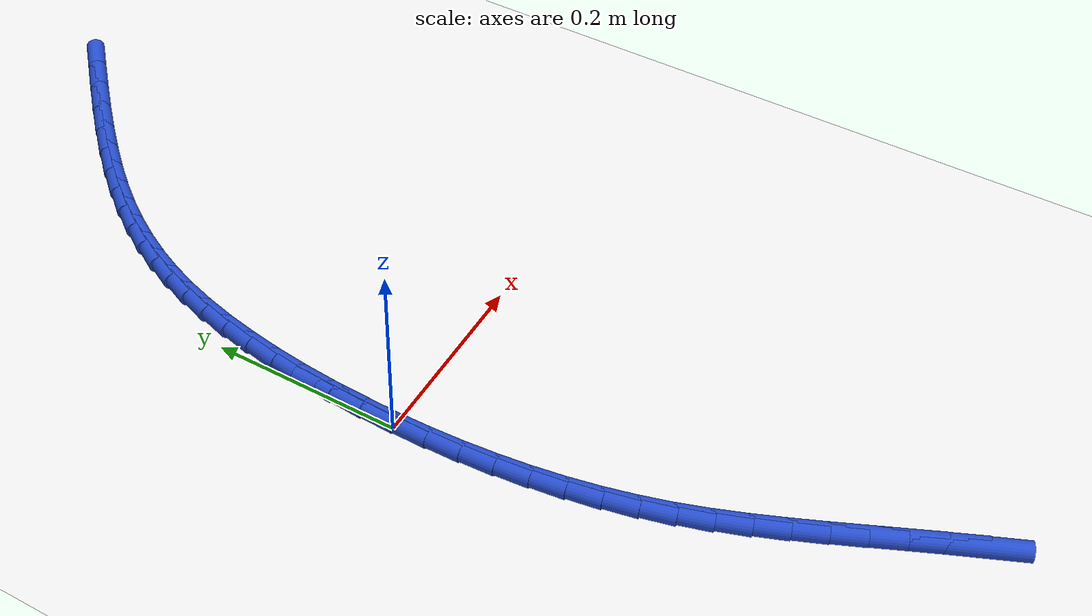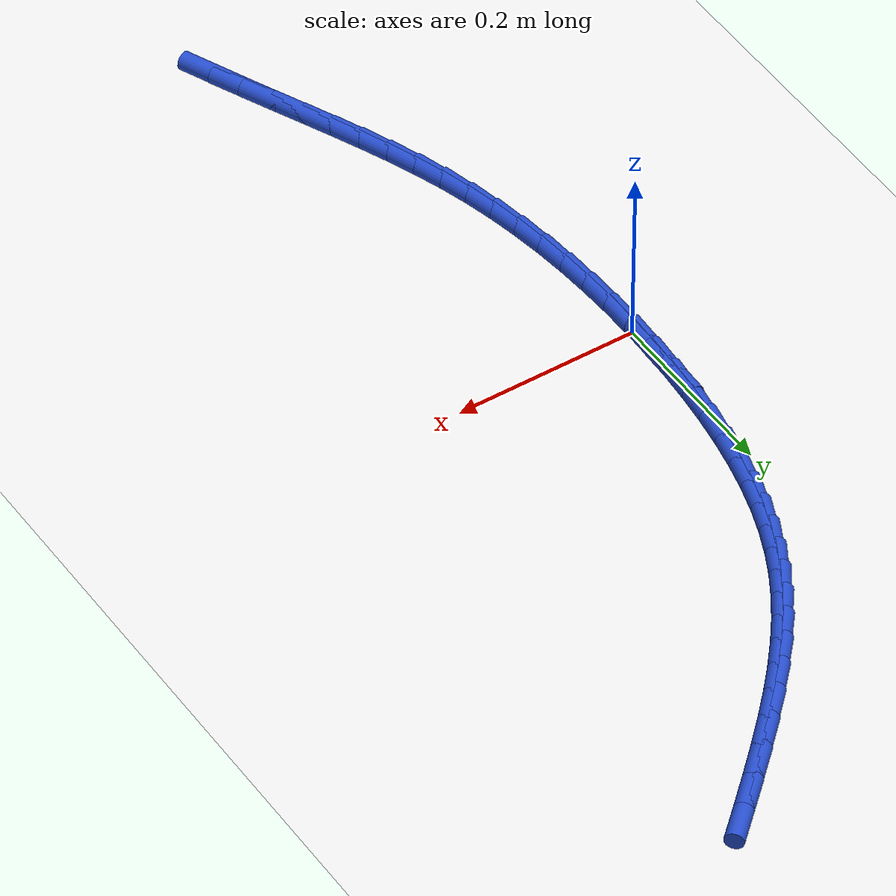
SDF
<sdf version="1.6">
 <world name="default">
  <model name="ground_plane">
   <static>1</static>
   <link name="link">
    <collision name="collision">
     <geometry><plane><normal>0 0 1</normal><size>100 100</size></plane></geometry>
     <surface><friction><ode><mu>100</mu><mu2>50</mu2></ode></friction></surface>
    </collision>
    <visual name="visual">
     <cast_shadows>0</cast_shadows>
     <geometry><plane><normal>0 0 1</normal><size>100 100</size></plane></geometry>
     <material>
      <script><uri>file://media/materials/scripts/gazebo.material</uri><name>Gazebo/WhiteGlow</name></script>
     </material>
    </visual>
   </link>
  </model>
  <model name="line">
   <link name="link_0">
    <pose>-5.204170427930421e-18 1.3877787807814457e-17 0.01 0 1.57 1.5539956028132262</pose>
    <collision name="collision">
     <geometry><cylinder><radius>0.01</radius><length>0.08</length></cylinder></geometry>
    </collision>
    <visual name="visual">
     <material>
      <script><name>Gazebo/Blue</name><uri>file://media/materials/scripts/gazebo.material</uri></script>
     </material>
     <geometry><cylinder><radius>0.01</radius><length>0.08</length></cylinder></geometry>
    </visual>
   </link>
   <link name="link_1">
    <pose>0.0005980265331277306 0.03559193434376886 0.01 0 1.57 1.5232543392431086</pose>
    <collision name="collision">
     <geometry><cylinder><radius>0.01</radius><length>0.08</length></cylinder></geometry>
    </collision>
    <visual name="visual">
     <material>
      <script><name>Gazebo/Blue</name><uri>file://media/materials/scripts/gazebo.material</uri></script>
     </material>
     <geometry><cylinder><radius>0.01</radius><length>0.08</length></cylinder></geometry>
    </visual>
   </link>
   <link name="link_2">
    <pose>0.002291742754683563 0.07119078175580612 0.01 0 1.57 1.4909164867250893</pose>
    <collision name="collision">
     <geometry><cylinder><radius>0.01</radius><length>0.08</length></cylinder></geometry>
    </collision>
    <visual name="visual">
     <material>
      <script><name>Gazebo/Blue</name><uri>file://media/materials/scripts/gazebo.material</uri></script>
     </material>
     <geometry><cylinder><radius>0.01</radius><length>0.08</length></cylinder></geometry>
    </visual>
   </link>
   <link name="link_3">
    <pose>0.005120607771929287 0.10652943111934357 0.01 0 1.57 1.4562945144002444</pose>
    <collision name="collision">
     <geometry><cylinder><radius>0.01</radius><length>0.08</length></cylinder></geometry>
    </collision>
    <visual name="visual">
     <material>
      <script><name>Gazebo/Blue</name><uri>file://media/materials/scripts/gazebo.material</uri></script>
     </material>
     <geometry><cylinder><radius>0.01</radius><length>0.08</length></cylinder></geometry>
    </visual>
   </link>
   <link name="link_4">
    <pose>0.009124080692126687 0.14134077131761294 0.01 0 1.57 1.4186016950346203</pose>
    <collision name="collision">
     <geometry><cylinder><radius>0.01</radius><length>0.08</length></cylinder></geometry>
    </collision>
    <visual name="visual">
     <material>
      <script><name>Gazebo/Blue</name><uri>file://media/materials/scripts/gazebo.material</uri></script>
     </material>
     <geometry><cylinder><radius>0.01</radius><length>0.08</length></cylinder></geometry>
    </visual>
   </link>
   <link name="link_5">
    <pose>0.014341620622537552 0.1753576912338459 0.01 0 1.57 1.3769047832948358</pose>
    <collision name="collision">
     <geometry><cylinder><radius>0.01</radius><length>0.08</length></cylinder></geometry>
    </collision>
    <visual name="visual">
     <material>
      <script><name>Gazebo/Blue</name><uri>file://media/materials/scripts/gazebo.material</uri></script>
     </material>
     <geometry><cylinder><radius>0.01</radius><length>0.08</length></cylinder></geometry>
    </visual>
   </link>
   <link name="link_6">
    <pose>0.020812686670423686 0.20831307975127444 0.01 0 1.57 1.3300668114936554</pose>
    <collision name="collision">
     <geometry><cylinder><radius>0.01</radius><length>0.08</length></cylinder></geometry>
    </collision>
    <visual name="visual">
     <material>
      <script><name>Gazebo/Blue</name><uri>file://media/materials/scripts/gazebo.material</uri></script>
     </material>
     <geometry><cylinder><radius>0.01</radius><length>0.08</length></cylinder></geometry>
    </visual>
   </link>
   <link name="link_7">
    <pose>0.028576737943046847 0.23993982575312986 0.01 0 1.57 1.2767175931004857</pose>
    <collision name="collision">
     <geometry><cylinder><radius>0.01</radius><length>0.08</length></cylinder></geometry>
    </collision>
    <visual name="visual">
     <material>
      <script><name>Gazebo/Blue</name><uri>file://media/materials/scripts/gazebo.material</uri></script>
     </material>
     <geometry><cylinder><radius>0.01</radius><length>0.08</length></cylinder></geometry>
    </visual>
   </link>
   <link name="link_8">
    <pose>0.03767336790856834 0.2699755678706415 0.01 0 1.57 1.217369260622729</pose>
    <collision name="collision">
     <geometry><cylinder><radius>0.01</radius><length>0.08</length></cylinder></geometry>
    </collision>
    <visual name="visual">
     <material>
      <script><name>Gazebo/Blue</name><uri>file://media/materials/scripts/gazebo.material</uri></script>
     </material>
     <geometry><cylinder><radius>0.01</radius><length>0.08</length></cylinder></geometry>
    </visual>
   </link>
   <link name="link_9">
    <pose>0.04814813624060782 0.298368854103285 0.01 0 1.57 1.155319746181908</pose>
    <collision name="collision">
     <geometry><cylinder><radius>0.01</radius><length>0.08</length></cylinder></geometry>
    </collision>
    <visual name="visual">
     <material>
      <script><name>Gazebo/Blue</name><uri>file://media/materials/scripts/gazebo.material</uri></script>
     </material>
     <geometry><cylinder><radius>0.01</radius><length>0.08</length></cylinder></geometry>
    </visual>
   </link>
   <link name="link_10">
    <pose>0.06005481240099171 0.32535845397512186 0.01 0 1.57 1.092705463806939</pose>
    <collision name="collision">
     <geometry><cylinder><radius>0.01</radius><length>0.08</length></cylinder></geometry>
    </collision>
    <visual name="visual">
     <material>
      <script><name>Gazebo/Blue</name><uri>file://media/materials/scripts/gazebo.material</uri></script>
     </material>
     <geometry><cylinder><radius>0.01</radius><length>0.08</length></cylinder></geometry>
    </visual>
   </link>
   <link name="link_11">
    <pose>0.07344776331147915 0.35120425761992513 0.01 0 1.57 1.0316605319806469</pose>
    <collision name="collision">
     <geometry><cylinder><radius>0.01</radius><length>0.08</length></cylinder></geometry>
    </collision>
    <visual name="visual">
     <material>
      <script><name>Gazebo/Blue</name><uri>file://media/materials/scripts/gazebo.material</uri></script>
     </material>
     <geometry><cylinder><radius>0.01</radius><length>0.08</length></cylinder></geometry>
    </visual>
   </link>
   <link name="link_12">
    <pose>0.08838135589382916 0.37616615517146773 0.01 0 1.57 0.974214381793345</pose>
    <collision name="collision">
     <geometry><cylinder><radius>0.01</radius><length>0.08</length></cylinder></geometry>
    </collision>
    <visual name="visual">
     <material>
      <script><name>Gazebo/Blue</name><uri>file://media/materials/scripts/gazebo.material</uri></script>
     </material>
     <geometry><cylinder><radius>0.01</radius><length>0.08</length></cylinder></geometry>
    </visual>
   </link>
   <link name="link_13">
    <pose>0.10490995706980086 0.40050403676352275 0.01 0 1.57 0.9220393668527831</pose>
    <collision name="collision">
     <geometry><cylinder><radius>0.01</radius><length>0.08</length></cylinder></geometry>
    </collision>
    <visual name="visual">
     <material>
      <script><name>Gazebo/Blue</name><uri>file://media/materials/scripts/gazebo.material</uri></script>
     </material>
     <geometry><cylinder><radius>0.01</radius><length>0.08</length></cylinder></geometry>
    </visual>
   </link>
   <link name="link_14">
    <pose>0.12308793376115326 0.42447779252986295 0.01 0 1.57 0.8762941574746544</pose>
    <collision name="collision">
     <geometry><cylinder><radius>0.01</radius><length>0.08</length></cylinder></geometry>
    </collision>
    <visual name="visual">
     <material>
      <script><name>Gazebo/Blue</name><uri>file://media/materials/scripts/gazebo.material</uri></script>
     </material>
     <geometry><cylinder><radius>0.01</radius><length>0.08</length></cylinder></geometry>
    </visual>
   </link>
   <link name="link_15">
    <pose>0.14296965288964547 0.44834731260426147 0.01 0 1.57 0.8375864889348155</pose>
    <collision name="collision">
     <geometry><cylinder><radius>0.01</radius><length>0.08</length></cylinder></geometry>
    </collision>
    <visual name="visual">
     <material>
      <script><name>Gazebo/Blue</name><uri>file://media/materials/scripts/gazebo.material</uri></script>
     </material>
     <geometry><cylinder><radius>0.01</radius><length>0.08</length></cylinder></geometry>
    </visual>
   </link>
   <link name="link_16">
    <pose>0.1646094813770366 0.4723724871204913 0.01 0 1.57 0.8060331943420531</pose>
    <collision name="collision">
     <geometry><cylinder><radius>0.01</radius><length>0.08</length></cylinder></geometry>
    </collision>
    <visual name="visual">
     <material>
      <script><name>Gazebo/Blue</name><uri>file://media/materials/scripts/gazebo.material</uri></script>
     </material>
     <geometry><cylinder><radius>0.01</radius><length>0.08</length></cylinder></geometry>
    </visual>
   </link>
   <link name="link_17">
    <pose>0.18806178614508567 0.49681320621232533 0.01 0 1.57 0.781373342170855</pose>
    <collision name="collision">
     <geometry><cylinder><radius>0.01</radius><length>0.08</length></cylinder></geometry>
    </collision>
    <visual name="visual">
     <material>
      <script><name>Gazebo/Blue</name><uri>file://media/materials/scripts/gazebo.material</uri></script>
     </material>
     <geometry><cylinder><radius>0.01</radius><length>0.08</length></cylinder></geometry>
    </visual>
   </link>
   <link name="link_18">
    <pose>0.21338093411555187 0.5219293600135366 0.01 0 1.57 0.763093015876436</pose>
    <collision name="collision">
     <geometry><cylinder><radius>0.01</radius><length>0.08</length></cylinder></geometry>
    </collision>
    <visual name="visual">
     <material>
      <script><name>Gazebo/Blue</name><uri>file://media/materials/scripts/gazebo.material</uri></script>
     </material>
     <geometry><cylinder><radius>0.01</radius><length>0.08</length></cylinder></geometry>
    </visual>
   </link>
   <link name="link_19">
    <pose>0.24062129221019404 0.5479808386578979 0.01 0 1.57 0.7505353933836121</pose>
    <collision name="collision">
     <geometry><cylinder><radius>0.01</radius><length>0.08</length></cylinder></geometry>
    </collision>
    <visual name="visual">
     <material>
      <script><name>Gazebo/Blue</name><uri>file://media/materials/scripts/gazebo.material</uri></script>
     </material>
     <geometry><cylinder><radius>0.01</radius><length>0.08</length></cylinder></geometry>
    </visual>
   </link>
   <link name="link_20">
    <pose>0.26983722735077154 0.5752275322791827 0.01 0 1.57 0.7429852658735079</pose>
    <collision name="collision">
     <geometry><cylinder><radius>0.01</radius><length>0.08</length></cylinder></geometry>
    </collision>
    <visual name="visual">
     <material>
      <script><name>Gazebo/Blue</name><uri>file://media/materials/scripts/gazebo.material</uri></script>
     </material>
     <geometry><cylinder><radius>0.01</radius><length>0.08</length></cylinder></geometry>
    </visual>
   </link>
   <link name="link_224">
    <pose>0.14510945594164776 -0.5257348977293066 0.01 0 1.57 -1.160880395987435</pose>
    <collision name="collision">
     <geometry><cylinder><radius>0.01</radius><length>0.08</length></cylinder></geometry>
    </collision>
    <visual name="visual">
     <material>
      <script><name>Gazebo/Blue</name><uri>file://media/materials/scripts/gazebo.material</uri></script>
     </material>
     <geometry><cylinder><radius>0.01</radius><length>0.08</length></cylinder></geometry>
    </visual>
   </link>
   <link name="link_225">
    <pose>0.13037973984798604 -0.491836954091159 0.01 0 1.57 -1.1492698050447254</pose>
    <collision name="collision">
     <geometry><cylinder><radius>0.01</radius><length>0.08</length></cylinder></geometry>
    </collision>
    <visual name="visual">
     <material>
      <script><name>Gazebo/Blue</name><uri>file://media/materials/scripts/gazebo.material</uri></script>
     </material>
     <geometry><cylinder><radius>0.01</radius><length>0.08</length></cylinder></geometry>
    </visual>
   </link>
   <link name="link_226">
    <pose>0.1156378974168305 -0.458960757996587 0.01 0 1.57 -1.1440190623558584</pose>
    <collision name="collision">
     <geometry><cylinder><radius>0.01</radius><length>0.08</length></cylinder></geometry>
    </collision>
    <visual name="visual">
     <material>
      <script><name>Gazebo/Blue</name><uri>file://media/materials/scripts/gazebo.material</uri></script>
     </material>
     <geometry><cylinder><radius>0.01</radius><length>0.08</length></cylinder></geometry>
    </visual>
   </link>
   <link name="link_227">
    <pose>0.10106324550395392 -0.4269092675194232 0.01 0 1.57 -1.1466723383802724</pose>
    <collision name="collision">
     <geometry><cylinder><radius>0.01</radius><length>0.08</length></cylinder></geometry>
    </collision>
    <visual name="visual">
     <material>
      <script><name>Gazebo/Blue</name><uri>file://media/materials/scripts/gazebo.material</uri></script>
     </material>
     <geometry><cylinder><radius>0.01</radius><length>0.08</length></cylinder></geometry>
    </visual>
   </link>
   <link name="link_228">
    <pose>0.08685795962884763 -0.3954488000147361 0.01 0 1.57 -1.1576810656543361</pose>
    <collision name="collision">
     <geometry><cylinder><radius>0.01</radius><length>0.08</length></cylinder></geometry>
    </collision>
    <visual name="visual">
     <material>
      <script><name>Gazebo/Blue</name><uri>file://media/materials/scripts/gazebo.material</uri></script>
     </material>
     <geometry><cylinder><radius>0.01</radius><length>0.08</length></cylinder></geometry>
    </visual>
   </link>
   <link name="link_229">
    <pose>0.07322421531100279 -0.3643456728375943 0.01 0 1.57 -1.1773284848242818</pose>
    <collision name="collision">
     <geometry><cylinder><radius>0.01</radius><length>0.08</length></cylinder></geometry>
    </collision>
    <visual name="visual">
     <material>
      <script><name>Gazebo/Blue</name><uri>file://media/materials/scripts/gazebo.material</uri></script>
     </material>
     <geometry><cylinder><radius>0.01</radius><length>0.08</length></cylinder></geometry>
    </visual>
   </link>
   <link name="link_230">
    <pose>0.06036418806991031 -0.33336620334306505 0.01 0 1.57 -1.2056797692148091</pose>
    <collision name="collision">
     <geometry><cylinder><radius>0.01</radius><length>0.08</length></cylinder></geometry>
    </collision>
    <visual name="visual">
     <material>
      <script><name>Gazebo/Blue</name><uri>file://media/materials/scripts/gazebo.material</uri></script>
     </material>
     <geometry><cylinder><radius>0.01</radius><length>0.08</length></cylinder></geometry>
    </visual>
   </link>
   <link name="link_231">
    <pose>0.04848005342506216 -0.30227670888621877 0.01 0 1.57 -1.2425224314300334</pose>
    <collision name="collision">
     <geometry><cylinder><radius>0.01</radius><length>0.08</length></cylinder></geometry>
    </collision>
    <visual name="visual">
     <material>
      <script><name>Gazebo/Blue</name><uri>file://media/materials/scripts/gazebo.material</uri></script>
     </material>
     <geometry><cylinder><radius>0.01</radius><length>0.08</length></cylinder></geometry>
    </visual>
   </link>
   <link name="link_232">
    <pose>0.03777398689594916 -0.2708435068221228 0.01 0 1.57 -1.286917523628099</pose>
    <collision name="collision">
     <geometry><cylinder><radius>0.01</radius><length>0.08</length></cylinder></geometry>
    </collision>
    <visual name="visual">
     <material>
      <script><name>Gazebo/Blue</name><uri>file://media/materials/scripts/gazebo.material</uri></script>
     </material>
     <geometry><cylinder><radius>0.01</radius><length>0.08</length></cylinder></geometry>
    </visual>
   </link>
   <link name="link_233">
    <pose>0.028437955698442458 -0.23884433960289803 0.01 0 1.57 -1.3328474149557294</pose>
    <collision name="collision">
     <geometry><cylinder><radius>0.01</radius><length>0.08</length></cylinder></geometry>
    </collision>
    <visual name="visual">
     <material>
      <script><name>Gazebo/Blue</name><uri>file://media/materials/scripts/gazebo.material</uri></script>
     </material>
     <geometry><cylinder><radius>0.01</radius><length>0.08</length></cylinder></geometry>
    </visual>
   </link>
   <link name="link_234">
    <pose>0.020523653188873895 -0.20621394368464244 0.01 0 1.57 -1.376289968762044</pose>
    <collision name="collision">
     <geometry><cylinder><radius>0.01</radius><length>0.08</length></cylinder></geometry>
    </collision>
    <visual name="visual">
     <material>
      <script><name>Gazebo/Blue</name><uri>file://media/materials/scripts/gazebo.material</uri></script>
     </material>
     <geometry><cylinder><radius>0.01</radius><length>0.08</length></cylinder></geometry>
    </visual>
   </link>
   <link name="link_235">
    <pose>0.013980833106452631 -0.17300114597985536 0.01 0 1.57 -1.4172055323190302</pose>
    <collision name="collision">
     <geometry><cylinder><radius>0.01</radius><length>0.08</length></cylinder></geometry>
    </collision>
    <visual name="visual">
     <material>
      <script><name>Gazebo/Blue</name><uri>file://media/materials/scripts/gazebo.material</uri></script>
     </material>
     <geometry><cylinder><radius>0.01</radius><length>0.08</length></cylinder></geometry>
    </visual>
   </link>
   <link name="link_236">
    <pose>0.008756953476848503 -0.1392573427554526 0.01 0 1.57 -1.4556709943322212</pose>
    <collision name="collision">
     <geometry><cylinder><radius>0.01</radius><length>0.08</length></cylinder></geometry>
    </collision>
    <visual name="visual">
     <material>
      <script><name>Gazebo/Blue</name><uri>file://media/materials/scripts/gazebo.material</uri></script>
     </material>
     <geometry><cylinder><radius>0.01</radius><length>0.08</length></cylinder></geometry>
    </visual>
   </link>
   <link name="link_237">
    <pose>0.004799472325731338 -0.10503393027834995 0.01 0 1.57 -1.491783790807624</pose>
    <collision name="collision">
     <geometry><cylinder><radius>0.01</radius><length>0.08</length></cylinder></geometry>
    </collision>
    <visual name="visual">
     <material>
      <script><name>Gazebo/Blue</name><uri>file://media/materials/scripts/gazebo.material</uri></script>
     </material>
     <geometry><cylinder><radius>0.01</radius><length>0.08</length></cylinder></geometry>
    </visual>
   </link>
   <link name="link_238">
    <pose>0.0020558476787709157 -0.07038230481546229 0.01 0 1.57 -1.5256548621023964</pose>
    <collision name="collision">
     <geometry><cylinder><radius>0.01</radius><length>0.08</length></cylinder></geometry>
    </collision>
    <visual name="visual">
     <material>
      <script><name>Gazebo/Blue</name><uri>file://media/materials/scripts/gazebo.material</uri></script>
     </material>
     <geometry><cylinder><radius>0.01</radius><length>0.08</length></cylinder></geometry>
    </visual>
   </link>
   <link name="link_239">
    <pose>0.00047353756163721807 -0.035353862633707295 0.01 0 1.57 -1.5574029035297354</pose>
    <collision name="collision">
     <geometry><cylinder><radius>0.01</radius><length>0.08</length></cylinder></geometry>
    </collision>
    <visual name="visual">
     <material>
      <script><name>Gazebo/Blue</name><uri>file://media/materials/scripts/gazebo.material</uri></script>
     </material>
     <geometry><cylinder><radius>0.01</radius><length>0.08</length></cylinder></geometry>
    </visual>
   </link>
   <link name="link_240">
    <pose>-1.0408340855860843e-17 2.0816681711721685e-16 0.01 0 1.57 1.5544428148130993</pose>
    <collision name="collision">
     <geometry><cylinder><radius>0.01</radius><length>0.08</length></cylinder></geometry>
    </collision>
    <visual name="visual">
     <material>
      <script><name>Gazebo/Blue</name><uri>file://media/materials/scripts/gazebo.material</uri></script>
     </material>
     <geometry><cylinder><radius>0.01</radius><length>0.08</length></cylinder></geometry>
    </visual>
   </link>
   <link name="link_241">
    <pose>0.0005826930195290672 0.03562788681874436 0.01 0 1.57 1.5265752759664937</pose>
    <collision name="collision">
     <geometry><cylinder><radius>0.01</radius><length>0.08</length></cylinder></geometry>
    </collision>
    <visual name="visual">
     <material>
      <script><name>Gazebo/Blue</name><uri>file://media/materials/scripts/gazebo.material</uri></script>
     </material>
     <geometry><cylinder><radius>0.01</radius><length>0.08</length></cylinder></geometry>
    </visual>
   </link>
   <link name="link_242">
    <pose>0.0021690746458942816 0.0714784015556094 0.01 0 1.57 1.5404597614426927</pose>
    <collision name="collision">
     <geometry><cylinder><radius>0.01</radius><length>0.08</length></cylinder></geometry>
    </collision>
    <visual name="visual">
     <material>
      <script><name>Gazebo/Blue</name><uri>file://media/materials/scripts/gazebo.material</uri></script>
     </material>
     <geometry><cylinder><radius>0.01</radius><length>0.08</length></cylinder></geometry>
    </visual>
   </link>
  </model>
 </world>
</sdf>
